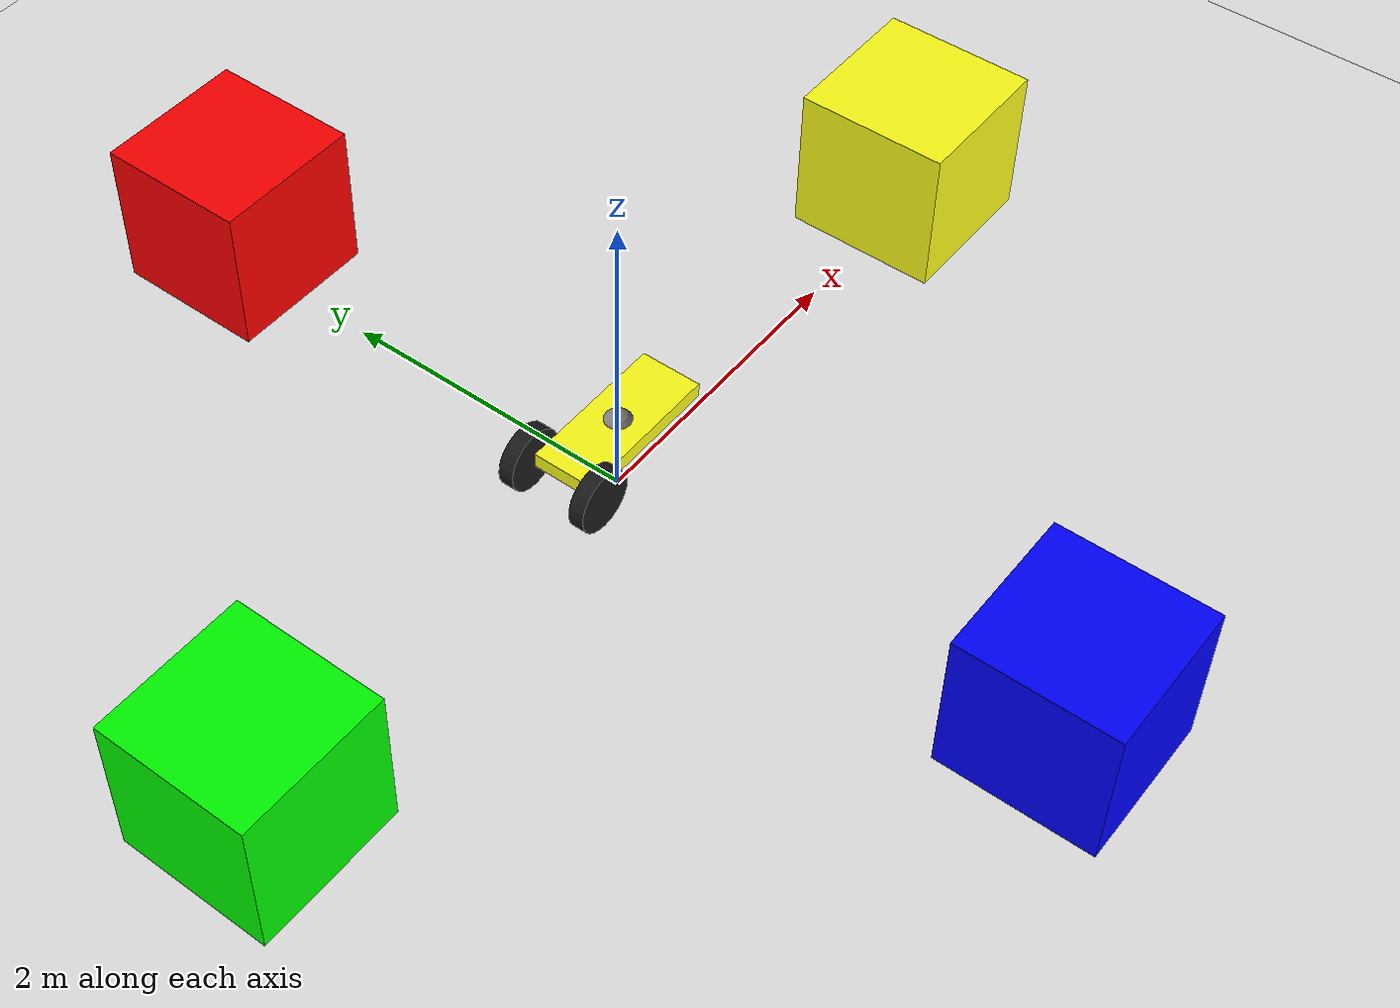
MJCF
<!-- https://mujoco.readthedocs.io/en/latest/overview.html?highlight=hello.xml#examples -->

<mujoco model="differential-drive-car">
  <option gravity = "0 0 -9.81" timestep="0.001" integrator="RK4">
  <flag contact="enable" />
 </option >
 <visual>
     <headlight ambient="0.5 0.5 0.5"/>
     <global offwidth="640" offheight="480"/>
 </visual>
 <default>
  <camera fovy="73.74"/>
</default>
   <worldbody>
      <geom name = "plane" type="plane" size="10 10 0.1" rgba="0.9 0.9 0.9 1"/>
      <body name="chassis" pos="0 0 0.5" euler = "0 0 0">
         <joint type="free"/>
         <inertial pos="0 0 0" mass="10" diaginertia="1 1 1"/>
         <geom type="box" size=".5 .2 .05" rgba="1 1 0.1 1"/>
         <site name="marker" pos="0 0 0" size="0.1"/>
         <camera name="robot_camera" pos="0.5 0 0.5" euler="0 -90 270"/>
         <body name="left-wheel" pos="-0.5 0.25 0" euler = "90 0 0" >
            <joint name = "LW" type="hinge" axis = "0 0 -1" pos = "0 0 0"/>
            <geom type="cylinder" size=".2 0.05" rgba=".1 .1 .1 1" mass="10"/>
        </body>
        <body name="right-wheel" pos="-0.5 -0.25 0" euler = "90 0 0" >
           <joint name = "RW" type="hinge" axis = "0 0 -1" pos = "0 0 0"/>
           <geom type="cylinder" size=".2 0.05" rgba=".1 .1 .1 1" mass="10"/>
       </body>
     </body>
     <body name='obstacle1' pos="3 0 0.5" euler="0 0 0">
      <joint name='joint1' type='slide' axis='1 0 0' pos = '0 0 0'/>
      <geom type="box" size=".5 .5 .5" rgba="1 1 0.1 1" mass="100"/>
      <camera name="obstacle_camera1" pos="0 0 1" zaxis="0 0 1"/>
    </body>
    <body name='obstacle2' pos="0 3 0.5" euler="0 0 0">
      <joint name='joint2' type='slide' axis='1 0 0' pos = '0 0 0'/>
      <geom type="box" size=".5 .5 .5" rgba="1 0 0 1" mass="10"/>
      <camera name="obstacle_camera2" pos="0 0 1" zaxis="0 0 1"/>
    </body>
    <body name='obstacle3' pos="-3 0 0.5" euler="0 0 0">
      <joint name='joint3' type='slide' axis='1 0 0' pos = '0 0 0'/>
      <geom type="box" size=".5 .5 .5" rgba="0 1 0 1" mass="10"/>
      <camera name="obstacle_camera3" pos="0 0 1" zaxis="0 0 1"/>
    </body>
    <body name='obstacle4' pos="0 -3 0.5" euler="0 0 0">
      <joint name='joint4' type='slide' axis='1 0 0' pos = '0 0 0'/>
      <geom type="box" size=".5 .5 .5" rgba="0 0 1 1" mass="10"/>
      <camera name="obstacle_camera4" pos="0 0 1" zaxis="0 0 1"/>
    </body>
   </worldbody>
   <sensor>
     <framepos objtype="site" objname="marker"/>
   </sensor>
   <actuator>
     <velocity name="vservoL" joint="LW" kv="10" />
     <velocity name="vservoR" joint="RW" kv="10" />
   </actuator>
</mujoco>
